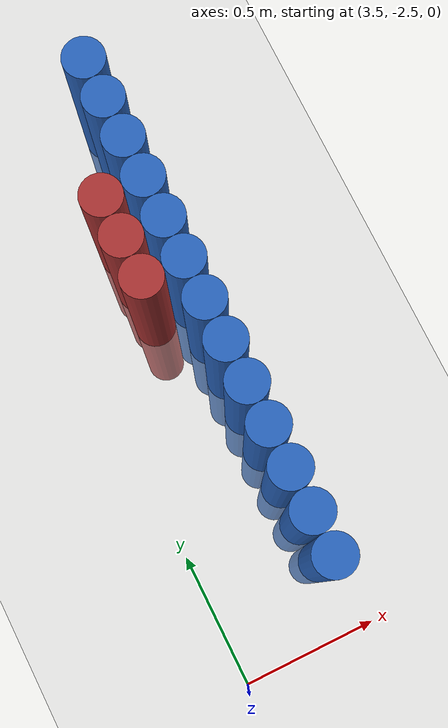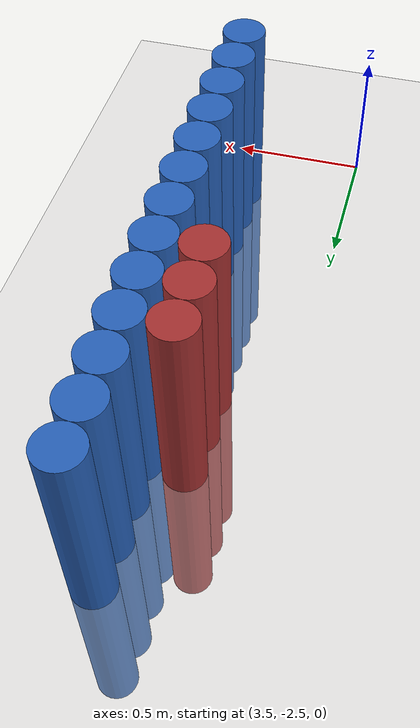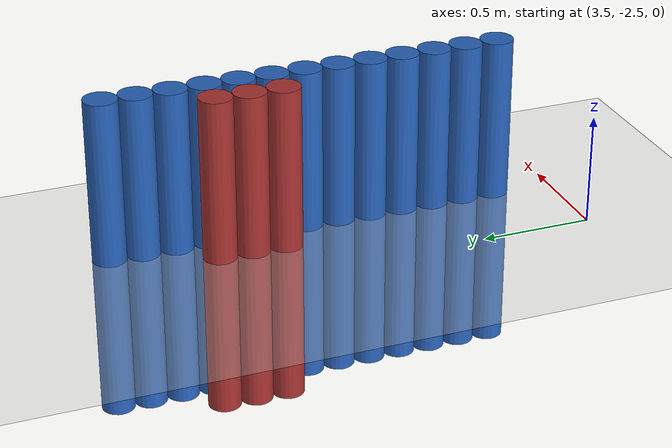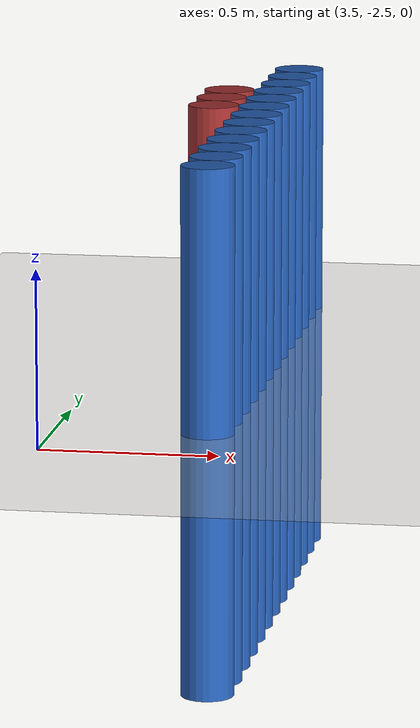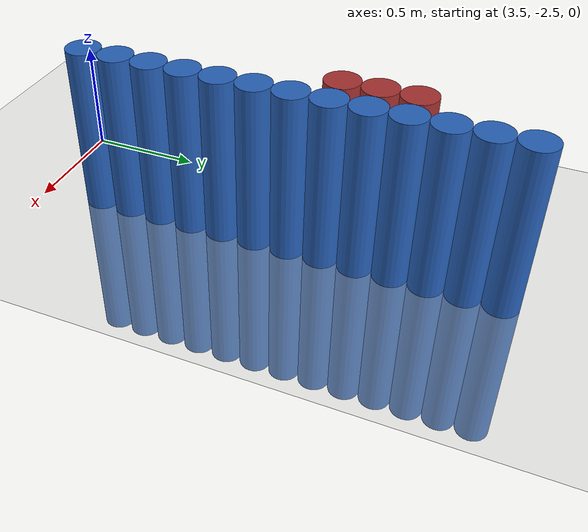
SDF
<sdf version="1.6">
 <world name="default">
  <model name="ground_plane">
   <static>1</static>
   <link name="link">
    <collision name="collision">
     <geometry><plane><normal>0 0 1</normal><size>100 100</size></plane></geometry>
     <surface><friction><ode><mu>100</mu><mu2>50</mu2></ode></friction></surface>
    </collision>
    <visual name="visual">
     <cast_shadows>0</cast_shadows>
     <geometry><plane><normal>0 0 1</normal><size>100 100</size></plane></geometry>
     <material>
      <script><uri>file://media/materials/scripts/gazebo.material</uri><name>Gazebo/Grey</name></script>
     </material>
    </visual>
   </link>
  </model>
  <model name="unit_cylinder_84">
   <static>1</static>
   <pose>3.925000 -2.225000 0.000000 0.000000 0.000000 0.000000</pose>
   <link name="link">
    <inertial>
     <mass>1</mass>
     <inertia><ixx>0.145833</ixx><ixy>0</ixy><ixz>0</ixz><iyy>0.145833</iyy><iyz>0</iyz><izz>0.125</izz></inertia>
    </inertial>
    <collision name="collision">
     <geometry><cylinder><radius>0.075000</radius><length>1.5</length></cylinder></geometry>
    </collision>
    <visual name="visual">
     <geometry><cylinder><radius>0.075000</radius><length>1.5</length></cylinder></geometry>
     <material>
      <ambient>0.152000 0.379000 0.720000 1</ambient>
      <diffuse>0.152000 0.379000 0.720000 1</diffuse>
     </material>
     <material>
      <script><name>Gazebo/Grey</name><uri>file://media/materials/scripts/gazebo.material</uri></script>
     </material>
    </visual>
   </link>
  </model>
  <model name="unit_cylinder_86">
   <static>1</static>
   <pose>3.925000 -2.075000 0.000000 0.000000 0.000000 0.000000</pose>
   <link name="link">
    <inertial>
     <mass>1</mass>
     <inertia><ixx>0.145833</ixx><ixy>0</ixy><ixz>0</ixz><iyy>0.145833</iyy><iyz>0</iyz><izz>0.125</izz></inertia>
    </inertial>
    <collision name="collision">
     <geometry><cylinder><radius>0.075000</radius><length>1.5</length></cylinder></geometry>
    </collision>
    <visual name="visual">
     <geometry><cylinder><radius>0.075000</radius><length>1.5</length></cylinder></geometry>
     <material>
      <ambient>0.152000 0.379000 0.720000 1</ambient>
      <diffuse>0.152000 0.379000 0.720000 1</diffuse>
     </material>
     <material>
      <script><name>Gazebo/Grey</name><uri>file://media/materials/scripts/gazebo.material</uri></script>
     </material>
    </visual>
   </link>
  </model>
  <model name="unit_cylinder_88">
   <static>1</static>
   <pose>3.925000 -1.925000 0.000000 0.000000 0.000000 0.000000</pose>
   <link name="link">
    <inertial>
     <mass>1</mass>
     <inertia><ixx>0.145833</ixx><ixy>0</ixy><ixz>0</ixz><iyy>0.145833</iyy><iyz>0</iyz><izz>0.125</izz></inertia>
    </inertial>
    <collision name="collision">
     <geometry><cylinder><radius>0.075000</radius><length>1.5</length></cylinder></geometry>
    </collision>
    <visual name="visual">
     <geometry><cylinder><radius>0.075000</radius><length>1.5</length></cylinder></geometry>
     <material>
      <ambient>0.152000 0.379000 0.720000 1</ambient>
      <diffuse>0.152000 0.379000 0.720000 1</diffuse>
     </material>
     <material>
      <script><name>Gazebo/Grey</name><uri>file://media/materials/scripts/gazebo.material</uri></script>
     </material>
    </visual>
   </link>
  </model>
  <model name="unit_cylinder_90">
   <static>1</static>
   <pose>3.925000 -1.775000 0.000000 0.000000 0.000000 0.000000</pose>
   <link name="link">
    <inertial>
     <mass>1</mass>
     <inertia><ixx>0.145833</ixx><ixy>0</ixy><ixz>0</ixz><iyy>0.145833</iyy><iyz>0</iyz><izz>0.125</izz></inertia>
    </inertial>
    <collision name="collision">
     <geometry><cylinder><radius>0.075000</radius><length>1.5</length></cylinder></geometry>
    </collision>
    <visual name="visual">
     <geometry><cylinder><radius>0.075000</radius><length>1.5</length></cylinder></geometry>
     <material>
      <ambient>0.152000 0.379000 0.720000 1</ambient>
      <diffuse>0.152000 0.379000 0.720000 1</diffuse>
     </material>
     <material>
      <script><name>Gazebo/Grey</name><uri>file://media/materials/scripts/gazebo.material</uri></script>
     </material>
    </visual>
   </link>
  </model>
  <model name="unit_cylinder_92">
   <static>1</static>
   <pose>3.925000 -1.625000 0.000000 0.000000 0.000000 0.000000</pose>
   <link name="link">
    <inertial>
     <mass>1</mass>
     <inertia><ixx>0.145833</ixx><ixy>0</ixy><ixz>0</ixz><iyy>0.145833</iyy><iyz>0</iyz><izz>0.125</izz></inertia>
    </inertial>
    <collision name="collision">
     <geometry><cylinder><radius>0.075000</radius><length>1.5</length></cylinder></geometry>
    </collision>
    <visual name="visual">
     <geometry><cylinder><radius>0.075000</radius><length>1.5</length></cylinder></geometry>
     <material>
      <ambient>0.152000 0.379000 0.720000 1</ambient>
      <diffuse>0.152000 0.379000 0.720000 1</diffuse>
     </material>
     <material>
      <script><name>Gazebo/Grey</name><uri>file://media/materials/scripts/gazebo.material</uri></script>
     </material>
    </visual>
   </link>
  </model>
  <model name="unit_cylinder_94">
   <static>1</static>
   <pose>3.925000 -1.475000 0.000000 0.000000 0.000000 0.000000</pose>
   <link name="link">
    <inertial>
     <mass>1</mass>
     <inertia><ixx>0.145833</ixx><ixy>0</ixy><ixz>0</ixz><iyy>0.145833</iyy><iyz>0</iyz><izz>0.125</izz></inertia>
    </inertial>
    <collision name="collision">
     <geometry><cylinder><radius>0.075000</radius><length>1.5</length></cylinder></geometry>
    </collision>
    <visual name="visual">
     <geometry><cylinder><radius>0.075000</radius><length>1.5</length></cylinder></geometry>
     <material>
      <ambient>0.152000 0.379000 0.720000 1</ambient>
      <diffuse>0.152000 0.379000 0.720000 1</diffuse>
     </material>
     <material>
      <script><name>Gazebo/Grey</name><uri>file://media/materials/scripts/gazebo.material</uri></script>
     </material>
    </visual>
   </link>
  </model>
  <model name="unit_cylinder_96">
   <static>1</static>
   <pose>3.925000 -1.325000 0.000000 0.000000 0.000000 0.000000</pose>
   <link name="link">
    <inertial>
     <mass>1</mass>
     <inertia><ixx>0.145833</ixx><ixy>0</ixy><ixz>0</ixz><iyy>0.145833</iyy><iyz>0</iyz><izz>0.125</izz></inertia>
    </inertial>
    <collision name="collision">
     <geometry><cylinder><radius>0.075000</radius><length>1.5</length></cylinder></geometry>
    </collision>
    <visual name="visual">
     <geometry><cylinder><radius>0.075000</radius><length>1.5</length></cylinder></geometry>
     <material>
      <ambient>0.152000 0.379000 0.720000 1</ambient>
      <diffuse>0.152000 0.379000 0.720000 1</diffuse>
     </material>
     <material>
      <script><name>Gazebo/Grey</name><uri>file://media/materials/scripts/gazebo.material</uri></script>
     </material>
    </visual>
   </link>
  </model>
  <model name="unit_cylinder_98">
   <static>1</static>
   <pose>3.925000 -1.175000 0.000000 0.000000 0.000000 0.000000</pose>
   <link name="link">
    <inertial>
     <mass>1</mass>
     <inertia><ixx>0.145833</ixx><ixy>0</ixy><ixz>0</ixz><iyy>0.145833</iyy><iyz>0</iyz><izz>0.125</izz></inertia>
    </inertial>
    <collision name="collision">
     <geometry><cylinder><radius>0.075000</radius><length>1.5</length></cylinder></geometry>
    </collision>
    <visual name="visual">
     <geometry><cylinder><radius>0.075000</radius><length>1.5</length></cylinder></geometry>
     <material>
      <ambient>0.152000 0.379000 0.720000 1</ambient>
      <diffuse>0.152000 0.379000 0.720000 1</diffuse>
     </material>
     <material>
      <script><name>Gazebo/Grey</name><uri>file://media/materials/scripts/gazebo.material</uri></script>
     </material>
    </visual>
   </link>
  </model>
  <model name="unit_cylinder_100">
   <static>1</static>
   <pose>3.925000 -1.025000 0.000000 0.000000 0.000000 0.000000</pose>
   <link name="link">
    <inertial>
     <mass>1</mass>
     <inertia><ixx>0.145833</ixx><ixy>0</ixy><ixz>0</ixz><iyy>0.145833</iyy><iyz>0</iyz><izz>0.125</izz></inertia>
    </inertial>
    <collision name="collision">
     <geometry><cylinder><radius>0.075000</radius><length>1.5</length></cylinder></geometry>
    </collision>
    <visual name="visual">
     <geometry><cylinder><radius>0.075000</radius><length>1.5</length></cylinder></geometry>
     <material>
      <ambient>0.152000 0.379000 0.720000 1</ambient>
      <diffuse>0.152000 0.379000 0.720000 1</diffuse>
     </material>
     <material>
      <script><name>Gazebo/Grey</name><uri>file://media/materials/scripts/gazebo.material</uri></script>
     </material>
    </visual>
   </link>
  </model>
  <model name="unit_cylinder_102">
   <static>1</static>
   <pose>3.925000 -0.875000 0.000000 0.000000 0.000000 0.000000</pose>
   <link name="link">
    <inertial>
     <mass>1</mass>
     <inertia><ixx>0.145833</ixx><ixy>0</ixy><ixz>0</ixz><iyy>0.145833</iyy><iyz>0</iyz><izz>0.125</izz></inertia>
    </inertial>
    <collision name="collision">
     <geometry><cylinder><radius>0.075000</radius><length>1.5</length></cylinder></geometry>
    </collision>
    <visual name="visual">
     <geometry><cylinder><radius>0.075000</radius><length>1.5</length></cylinder></geometry>
     <material>
      <ambient>0.152000 0.379000 0.720000 1</ambient>
      <diffuse>0.152000 0.379000 0.720000 1</diffuse>
     </material>
     <material>
      <script><name>Gazebo/Grey</name><uri>file://media/materials/scripts/gazebo.material</uri></script>
     </material>
    </visual>
   </link>
  </model>
  <model name="unit_cylinder_104">
   <static>1</static>
   <pose>3.925000 -0.725000 0.000000 0.000000 0.000000 0.000000</pose>
   <link name="link">
    <inertial>
     <mass>1</mass>
     <inertia><ixx>0.145833</ixx><ixy>0</ixy><ixz>0</ixz><iyy>0.145833</iyy><iyz>0</iyz><izz>0.125</izz></inertia>
    </inertial>
    <collision name="collision">
     <geometry><cylinder><radius>0.075000</radius><length>1.5</length></cylinder></geometry>
    </collision>
    <visual name="visual">
     <geometry><cylinder><radius>0.075000</radius><length>1.5</length></cylinder></geometry>
     <material>
      <ambient>0.152000 0.379000 0.720000 1</ambient>
      <diffuse>0.152000 0.379000 0.720000 1</diffuse>
     </material>
     <material>
      <script><name>Gazebo/Grey</name><uri>file://media/materials/scripts/gazebo.material</uri></script>
     </material>
    </visual>
   </link>
  </model>
  <model name="unit_cylinder_106">
   <static>1</static>
   <pose>3.925000 -0.575000 0.000000 0.000000 0.000000 0.000000</pose>
   <link name="link">
    <inertial>
     <mass>1</mass>
     <inertia><ixx>0.145833</ixx><ixy>0</ixy><ixz>0</ixz><iyy>0.145833</iyy><iyz>0</iyz><izz>0.125</izz></inertia>
    </inertial>
    <collision name="collision">
     <geometry><cylinder><radius>0.075000</radius><length>1.5</length></cylinder></geometry>
    </collision>
    <visual name="visual">
     <geometry><cylinder><radius>0.075000</radius><length>1.5</length></cylinder></geometry>
     <material>
      <ambient>0.152000 0.379000 0.720000 1</ambient>
      <diffuse>0.152000 0.379000 0.720000 1</diffuse>
     </material>
     <material>
      <script><name>Gazebo/Grey</name><uri>file://media/materials/scripts/gazebo.material</uri></script>
     </material>
    </visual>
   </link>
  </model>
  <model name="unit_cylinder_108">
   <static>1</static>
   <pose>3.925000 -0.425000 0.000000 0.000000 0.000000 0.000000</pose>
   <link name="link">
    <inertial>
     <mass>1</mass>
     <inertia><ixx>0.145833</ixx><ixy>0</ixy><ixz>0</ixz><iyy>0.145833</iyy><iyz>0</iyz><izz>0.125</izz></inertia>
    </inertial>
    <collision name="collision">
     <geometry><cylinder><radius>0.075000</radius><length>1.5</length></cylinder></geometry>
    </collision>
    <visual name="visual">
     <geometry><cylinder><radius>0.075000</radius><length>1.5</length></cylinder></geometry>
     <material>
      <ambient>0.152000 0.379000 0.720000 1</ambient>
      <diffuse>0.152000 0.379000 0.720000 1</diffuse>
     </material>
     <material>
      <script><name>Gazebo/Grey</name><uri>file://media/materials/scripts/gazebo.material</uri></script>
     </material>
    </visual>
   </link>
  </model>
  <model name="unit_cylinder_452">
   <static>1</static>
   <pose>3.775000 -1.175000 0.000000 0.000000 0.000000 0.000000</pose>
   <link name="link">
    <inertial>
     <mass>1</mass>
     <inertia><ixx>0.145833</ixx><ixy>0</ixy><ixz>0</ixz><iyy>0.145833</iyy><iyz>0</iyz><izz>0.125</izz></inertia>
    </inertial>
    <collision name="collision">
     <geometry><cylinder><radius>0.075000</radius><length>1.5</length></cylinder></geometry>
    </collision>
    <visual name="visual">
     <geometry><cylinder><radius>0.075000</radius><length>1.5</length></cylinder></geometry>
     <material>
      <ambient>0.648000 0.192000 0.192000 1</ambient>
      <diffuse>0.648000 0.192000 0.192000 1</diffuse>
     </material>
     <material>
      <script><name>Gazebo/Grey</name><uri>file://media/materials/scripts/gazebo.material</uri></script>
     </material>
    </visual>
   </link>
  </model>
  <model name="unit_cylinder_453">
   <static>1</static>
   <pose>3.775000 -1.025000 0.000000 0.000000 0.000000 0.000000</pose>
   <link name="link">
    <inertial>
     <mass>1</mass>
     <inertia><ixx>0.145833</ixx><ixy>0</ixy><ixz>0</ixz><iyy>0.145833</iyy><iyz>0</iyz><izz>0.125</izz></inertia>
    </inertial>
    <collision name="collision">
     <geometry><cylinder><radius>0.075000</radius><length>1.5</length></cylinder></geometry>
    </collision>
    <visual name="visual">
     <geometry><cylinder><radius>0.075000</radius><length>1.5</length></cylinder></geometry>
     <material>
      <ambient>0.648000 0.192000 0.192000 1</ambient>
      <diffuse>0.648000 0.192000 0.192000 1</diffuse>
     </material>
     <material>
      <script><name>Gazebo/Grey</name><uri>file://media/materials/scripts/gazebo.material</uri></script>
     </material>
    </visual>
   </link>
  </model>
  <model name="unit_cylinder_454">
   <static>1</static>
   <pose>3.775000 -0.875000 0.000000 0.000000 0.000000 0.000000</pose>
   <link name="link">
    <inertial>
     <mass>1</mass>
     <inertia><ixx>0.145833</ixx><ixy>0</ixy><ixz>0</ixz><iyy>0.145833</iyy><iyz>0</iyz><izz>0.125</izz></inertia>
    </inertial>
    <collision name="collision">
     <geometry><cylinder><radius>0.075000</radius><length>1.5</length></cylinder></geometry>
    </collision>
    <visual name="visual">
     <geometry><cylinder><radius>0.075000</radius><length>1.5</length></cylinder></geometry>
     <material>
      <ambient>0.648000 0.192000 0.192000 1</ambient>
      <diffuse>0.648000 0.192000 0.192000 1</diffuse>
     </material>
     <material>
      <script><name>Gazebo/Grey</name><uri>file://media/materials/scripts/gazebo.material</uri></script>
     </material>
    </visual>
   </link>
  </model>
  <model name="unit_cylinder_471">
   <static>1</static>
   <pose>3.925000 -1.925000 0.000000 0.000000 0.000000 0.000000</pose>
   <link name="link">
    <inertial>
     <mass>1</mass>
     <inertia><ixx>0.145833</ixx><ixy>0</ixy><ixz>0</ixz><iyy>0.145833</iyy><iyz>0</iyz><izz>0.125</izz></inertia>
    </inertial>
    <collision name="collision">
     <geometry><cylinder><radius>0.075000</radius><length>1.5</length></cylinder></geometry>
    </collision>
    <visual name="visual">
     <geometry><cylinder><radius>0.075000</radius><length>1.5</length></cylinder></geometry>
     <material>
      <ambient>0.152000 0.379000 0.720000 1</ambient>
      <diffuse>0.152000 0.379000 0.720000 1</diffuse>
     </material>
     <material>
      <script><name>Gazebo/Grey</name><uri>file://media/materials/scripts/gazebo.material</uri></script>
     </material>
    </visual>
   </link>
  </model>
  <model name="unit_cylinder_472">
   <static>1</static>
   <pose>3.925000 -1.775000 0.000000 0.000000 0.000000 0.000000</pose>
   <link name="link">
    <inertial>
     <mass>1</mass>
     <inertia><ixx>0.145833</ixx><ixy>0</ixy><ixz>0</ixz><iyy>0.145833</iyy><iyz>0</iyz><izz>0.125</izz></inertia>
    </inertial>
    <collision name="collision">
     <geometry><cylinder><radius>0.075000</radius><length>1.5</length></cylinder></geometry>
    </collision>
    <visual name="visual">
     <geometry><cylinder><radius>0.075000</radius><length>1.5</length></cylinder></geometry>
     <material>
      <ambient>0.152000 0.379000 0.720000 1</ambient>
      <diffuse>0.152000 0.379000 0.720000 1</diffuse>
     </material>
     <material>
      <script><name>Gazebo/Grey</name><uri>file://media/materials/scripts/gazebo.material</uri></script>
     </material>
    </visual>
   </link>
  </model>
  <model name="unit_cylinder_473">
   <static>1</static>
   <pose>3.925000 -1.625000 0.000000 0.000000 0.000000 0.000000</pose>
   <link name="link">
    <inertial>
     <mass>1</mass>
     <inertia><ixx>0.145833</ixx><ixy>0</ixy><ixz>0</ixz><iyy>0.145833</iyy><iyz>0</iyz><izz>0.125</izz></inertia>
    </inertial>
    <collision name="collision">
     <geometry><cylinder><radius>0.075000</radius><length>1.5</length></cylinder></geometry>
    </collision>
    <visual name="visual">
     <geometry><cylinder><radius>0.075000</radius><length>1.5</length></cylinder></geometry>
     <material>
      <ambient>0.152000 0.379000 0.720000 1</ambient>
      <diffuse>0.152000 0.379000 0.720000 1</diffuse>
     </material>
     <material>
      <script><name>Gazebo/Grey</name><uri>file://media/materials/scripts/gazebo.material</uri></script>
     </material>
    </visual>
   </link>
  </model>
  <model name="unit_cylinder_474">
   <static>1</static>
   <pose>3.925000 -1.475000 0.000000 0.000000 0.000000 0.000000</pose>
   <link name="link">
    <inertial>
     <mass>1</mass>
     <inertia><ixx>0.145833</ixx><ixy>0</ixy><ixz>0</ixz><iyy>0.145833</iyy><iyz>0</iyz><izz>0.125</izz></inertia>
    </inertial>
    <collision name="collision">
     <geometry><cylinder><radius>0.075000</radius><length>1.5</length></cylinder></geometry>
    </collision>
    <visual name="visual">
     <geometry><cylinder><radius>0.075000</radius><length>1.5</length></cylinder></geometry>
     <material>
      <ambient>0.152000 0.379000 0.720000 1</ambient>
      <diffuse>0.152000 0.379000 0.720000 1</diffuse>
     </material>
     <material>
      <script><name>Gazebo/Grey</name><uri>file://media/materials/scripts/gazebo.material</uri></script>
     </material>
    </visual>
   </link>
  </model>
  <model name="unit_cylinder_475">
   <static>1</static>
   <pose>3.925000 -1.325000 0.000000 0.000000 0.000000 0.000000</pose>
   <link name="link">
    <inertial>
     <mass>1</mass>
     <inertia><ixx>0.145833</ixx><ixy>0</ixy><ixz>0</ixz><iyy>0.145833</iyy><iyz>0</iyz><izz>0.125</izz></inertia>
    </inertial>
    <collision name="collision">
     <geometry><cylinder><radius>0.075000</radius><length>1.5</length></cylinder></geometry>
    </collision>
    <visual name="visual">
     <geometry><cylinder><radius>0.075000</radius><length>1.5</length></cylinder></geometry>
     <material>
      <ambient>0.152000 0.379000 0.720000 1</ambient>
      <diffuse>0.152000 0.379000 0.720000 1</diffuse>
     </material>
     <material>
      <script><name>Gazebo/Grey</name><uri>file://media/materials/scripts/gazebo.material</uri></script>
     </material>
    </visual>
   </link>
  </model>
  <model name="unit_cylinder_476">
   <static>1</static>
   <pose>3.925000 -1.175000 0.000000 0.000000 0.000000 0.000000</pose>
   <link name="link">
    <inertial>
     <mass>1</mass>
     <inertia><ixx>0.145833</ixx><ixy>0</ixy><ixz>0</ixz><iyy>0.145833</iyy><iyz>0</iyz><izz>0.125</izz></inertia>
    </inertial>
    <collision name="collision">
     <geometry><cylinder><radius>0.075000</radius><length>1.5</length></cylinder></geometry>
    </collision>
    <visual name="visual">
     <geometry><cylinder><radius>0.075000</radius><length>1.5</length></cylinder></geometry>
     <material>
      <ambient>0.152000 0.379000 0.720000 1</ambient>
      <diffuse>0.152000 0.379000 0.720000 1</diffuse>
     </material>
     <material>
      <script><name>Gazebo/Grey</name><uri>file://media/materials/scripts/gazebo.material</uri></script>
     </material>
    </visual>
   </link>
  </model>
  <model name="unit_cylinder_477">
   <static>1</static>
   <pose>3.925000 -1.025000 0.000000 0.000000 0.000000 0.000000</pose>
   <link name="link">
    <inertial>
     <mass>1</mass>
     <inertia><ixx>0.145833</ixx><ixy>0</ixy><ixz>0</ixz><iyy>0.145833</iyy><iyz>0</iyz><izz>0.125</izz></inertia>
    </inertial>
    <collision name="collision">
     <geometry><cylinder><radius>0.075000</radius><length>1.5</length></cylinder></geometry>
    </collision>
    <visual name="visual">
     <geometry><cylinder><radius>0.075000</radius><length>1.5</length></cylinder></geometry>
     <material>
      <ambient>0.152000 0.379000 0.720000 1</ambient>
      <diffuse>0.152000 0.379000 0.720000 1</diffuse>
     </material>
     <material>
      <script><name>Gazebo/Grey</name><uri>file://media/materials/scripts/gazebo.material</uri></script>
     </material>
    </visual>
   </link>
  </model>
  <model name="unit_cylinder_478">
   <static>1</static>
   <pose>3.925000 -0.875000 0.000000 0.000000 0.000000 0.000000</pose>
   <link name="link">
    <inertial>
     <mass>1</mass>
     <inertia><ixx>0.145833</ixx><ixy>0</ixy><ixz>0</ixz><iyy>0.145833</iyy><iyz>0</iyz><izz>0.125</izz></inertia>
    </inertial>
    <collision name="collision">
     <geometry><cylinder><radius>0.075000</radius><length>1.5</length></cylinder></geometry>
    </collision>
    <visual name="visual">
     <geometry><cylinder><radius>0.075000</radius><length>1.5</length></cylinder></geometry>
     <material>
      <ambient>0.152000 0.379000 0.720000 1</ambient>
      <diffuse>0.152000 0.379000 0.720000 1</diffuse>
     </material>
     <material>
      <script><name>Gazebo/Grey</name><uri>file://media/materials/scripts/gazebo.material</uri></script>
     </material>
    </visual>
   </link>
  </model>
  <model name="unit_cylinder_479">
   <static>1</static>
   <pose>3.925000 -0.725000 0.000000 0.000000 0.000000 0.000000</pose>
   <link name="link">
    <inertial>
     <mass>1</mass>
     <inertia><ixx>0.145833</ixx><ixy>0</ixy><ixz>0</ixz><iyy>0.145833</iyy><iyz>0</iyz><izz>0.125</izz></inertia>
    </inertial>
    <collision name="collision">
     <geometry><cylinder><radius>0.075000</radius><length>1.5</length></cylinder></geometry>
    </collision>
    <visual name="visual">
     <geometry><cylinder><radius>0.075000</radius><length>1.5</length></cylinder></geometry>
     <material>
      <ambient>0.152000 0.379000 0.720000 1</ambient>
      <diffuse>0.152000 0.379000 0.720000 1</diffuse>
     </material>
     <material>
      <script><name>Gazebo/Grey</name><uri>file://media/materials/scripts/gazebo.material</uri></script>
     </material>
    </visual>
   </link>
  </model>
  <model name="unit_cylinder_480">
   <static>1</static>
   <pose>3.925000 -0.575000 0.000000 0.000000 0.000000 0.000000</pose>
   <link name="link">
    <inertial>
     <mass>1</mass>
     <inertia><ixx>0.145833</ixx><ixy>0</ixy><ixz>0</ixz><iyy>0.145833</iyy><iyz>0</iyz><izz>0.125</izz></inertia>
    </inertial>
    <collision name="collision">
     <geometry><cylinder><radius>0.075000</radius><length>1.5</length></cylinder></geometry>
    </collision>
    <visual name="visual">
     <geometry><cylinder><radius>0.075000</radius><length>1.5</length></cylinder></geometry>
     <material>
      <ambient>0.152000 0.379000 0.720000 1</ambient>
      <diffuse>0.152000 0.379000 0.720000 1</diffuse>
     </material>
     <material>
      <script><name>Gazebo/Grey</name><uri>file://media/materials/scripts/gazebo.material</uri></script>
     </material>
    </visual>
   </link>
  </model>
 </world>
</sdf>
